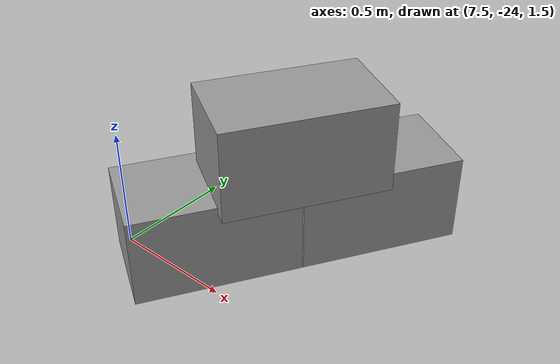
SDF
<sdf version="1.7">
 <world name="default">
  <model name="ground_plane">
   <static>1</static>
   <link name="link">
    <collision name="collision">
     <geometry><plane><normal>0 0 1</normal><size>100 100</size></plane></geometry>
     <surface>
      <contact><collide_bitmask>65535</collide_bitmask></contact>
      <friction><ode><mu>100</mu><mu2>50</mu2></ode></friction>
     </surface>
    </collision>
    <visual name="visual">
     <cast_shadows>0</cast_shadows>
     <geometry><plane><normal>0 0 1</normal><size>100 100</size></plane></geometry>
     <material>
      <script><uri>file://media/materials/scripts/gazebo.material</uri><name>Gazebo/Grey</name></script>
     </material>
    </visual>
   </link>
  </model>
  <model name="raceway">
   <static>1</static>
   <link name="link">
    <collision name="collision">
     <pose>0 0 0 1.5707 -0 0</pose>
     <geometry><mesh><uri>model://raceway/meshes/raceway.obj</uri></mesh></geometry>
    </collision>
    <visual name="visual">
     <pose>0 0 0 1.5707 -0 0</pose>
     <geometry><mesh><uri>model://raceway/meshes/raceway.obj</uri></mesh></geometry>
    </visual>
    <scale>3</scale>
   </link>
   <pose>12.1426 -6.58602 1.42468 9.6e-05 -0 0</pose>
  </model>
  <model name="Add_Box">
   <link name="link">
    <inertial>
     <mass>1</mass>
     <inertia>
      <ixx>0.166667</ixx>
      <ixy>0</ixy>
      <ixz>0</ixz>
      <iyy>0.166667</iyy>
      <iyz>0</iyz>
      <izz>0.166667</izz>
     </inertia>
    </inertial>
    <kinematic>1</kinematic>
    <gravity>0</gravity>
    <visual name="visual">
     <geometry><box><size>0.686 0.406 0.381</size></box></geometry>
     <material>
      <script><name>Gazebo/Grey</name><uri>file://media/materials/scripts/gazebo.material</uri></script>
      <shader type="pixel"><normal_map>__default__</normal_map></shader>
      <ambient>0.3 0.3 0.3 1</ambient>
      <diffuse>0.7 0.7 0.7 1</diffuse>
      <specular>0.01 0.01 0.01 1</specular>
      <emissive>0 0 0 1</emissive>
     </material>
    </visual>
    <collision name="collision">
     <geometry><box><size>1 1 1</size></box></geometry>
     <surface>
      <friction>
       <ode><mu>1</mu><mu2>1</mu2><fdir1>0 0 0</fdir1><slip1>0</slip1><slip2>0</slip2></ode>
       <torsional>
        <coefficient>1</coefficient>
        <patch_radius>0</patch_radius>
        <surface_radius>0</surface_radius>
        <use_patch_radius>1</use_patch_radius>
        <ode><slip>0</slip></ode>
       </torsional>
      </friction>
      <bounce><restitution_coefficient>0</restitution_coefficient><threshold>1e+06</threshold></bounce>
      <contact>
       <collide_without_contact>0</collide_without_contact>
       <collide_without_contact_bitmask>1</collide_without_contact_bitmask>
       <collide_bitmask>1</collide_bitmask>
       <ode>
        <soft_cfm>0</soft_cfm>
        <soft_erp>0.2</soft_erp>
        <kp>1e+13</kp>
        <kd>1</kd>
        <max_vel>0.01</max_vel>
        <min_depth>0</min_depth>
       </ode>
       <bullet>
        <split_impulse>1</split_impulse>
        <split_impulse_penetration_threshold>-0.01</split_impulse_penetration_threshold>
        <soft_cfm>0</soft_cfm>
        <soft_erp>0.2</soft_erp>
        <kp>1e+13</kp>
        <kd>1</kd>
       </bullet>
      </contact>
     </surface>
    </collision>
   </link>
   <link name="link_clone">
    <inertial>
     <mass>1</mass>
     <inertia>
      <ixx>0.166667</ixx>
      <ixy>0</ixy>
      <ixz>0</ixz>
      <iyy>0.166667</iyy>
      <iyz>0</iyz>
      <izz>0.166667</izz>
     </inertia>
    </inertial>
    <pose>-0.343354 -0.063316 0.354303 1e-05 -0 0</pose>
    <gravity>0</gravity>
    <visual name="visual">
     <geometry><box><size>0.686 0.406 0.381</size></box></geometry>
     <material>
      <script><name>Gazebo/Grey</name><uri>file://media/materials/scripts/gazebo.material</uri></script>
      <shader type="pixel"><normal_map>__default__</normal_map></shader>
      <ambient>0.3 0.3 0.3 1</ambient>
      <diffuse>0.7 0.7 0.7 1</diffuse>
      <specular>0.01 0.01 0.01 1</specular>
      <emissive>0 0 0 1</emissive>
     </material>
    </visual>
    <collision name="collision">
     <geometry><box><size>1 1 1</size></box></geometry>
     <surface>
      <friction>
       <ode><mu>1</mu><mu2>1</mu2><fdir1>0 0 0</fdir1><slip1>0</slip1><slip2>0</slip2></ode>
       <torsional>
        <coefficient>1</coefficient>
        <patch_radius>0</patch_radius>
        <surface_radius>0</surface_radius>
        <use_patch_radius>1</use_patch_radius>
        <ode><slip>0</slip></ode>
       </torsional>
      </friction>
      <bounce><restitution_coefficient>0</restitution_coefficient><threshold>1e+06</threshold></bounce>
      <contact>
       <collide_without_contact>0</collide_without_contact>
       <collide_without_contact_bitmask>1</collide_without_contact_bitmask>
       <collide_bitmask>1</collide_bitmask>
       <ode>
        <soft_cfm>0</soft_cfm>
        <soft_erp>0.2</soft_erp>
        <kp>1e+13</kp>
        <kd>1</kd>
        <max_vel>0.01</max_vel>
        <min_depth>0</min_depth>
       </ode>
       <bullet>
        <split_impulse>1</split_impulse>
        <split_impulse_penetration_threshold>-0.01</split_impulse_penetration_threshold>
        <soft_cfm>0</soft_cfm>
        <soft_erp>0.2</soft_erp>
        <kp>1e+13</kp>
        <kd>1</kd>
       </bullet>
      </contact>
     </surface>
    </collision>
   </link>
   <link name="link_clone_clone">
    <inertial>
     <mass>1</mass>
     <inertia>
      <ixx>0.166667</ixx>
      <ixy>0</ixy>
      <ixz>0</ixz>
      <iyy>0.166667</iyy>
      <iyz>0</iyz>
      <izz>0.166667</izz>
     </inertia>
    </inertial>
    <pose>-0.690786 -0.000183 -1e-05 2e-05 -0 0</pose>
    <gravity>0</gravity>
    <visual name="visual">
     <geometry><box><size>0.686 0.406 0.381</size></box></geometry>
     <material>
      <script><name>Gazebo/Grey</name><uri>file://media/materials/scripts/gazebo.material</uri></script>
      <shader type="pixel"><normal_map>__default__</normal_map></shader>
      <ambient>0.3 0.3 0.3 1</ambient>
      <diffuse>0.7 0.7 0.7 1</diffuse>
      <specular>0.01 0.01 0.01 1</specular>
      <emissive>0 0 0 1</emissive>
     </material>
    </visual>
    <collision name="collision">
     <geometry><box><size>1 1 1</size></box></geometry>
     <surface>
      <friction>
       <ode><mu>1</mu><mu2>1</mu2><fdir1>0 0 0</fdir1><slip1>0</slip1><slip2>0</slip2></ode>
       <torsional>
        <coefficient>1</coefficient>
        <patch_radius>0</patch_radius>
        <surface_radius>0</surface_radius>
        <use_patch_radius>1</use_patch_radius>
        <ode><slip>0</slip></ode>
       </torsional>
      </friction>
      <bounce><restitution_coefficient>0</restitution_coefficient><threshold>1e+06</threshold></bounce>
      <contact>
       <collide_without_contact>0</collide_without_contact>
       <collide_without_contact_bitmask>1</collide_without_contact_bitmask>
       <collide_bitmask>1</collide_bitmask>
       <ode>
        <soft_cfm>0</soft_cfm>
        <soft_erp>0.2</soft_erp>
        <kp>1e+13</kp>
        <kd>1</kd>
        <max_vel>0.01</max_vel>
        <min_depth>0</min_depth>
       </ode>
       <bullet>
        <split_impulse>1</split_impulse>
        <split_impulse_penetration_threshold>-0.01</split_impulse_penetration_threshold>
        <soft_cfm>0</soft_cfm>
        <soft_erp>0.2</soft_erp>
        <kp>1e+13</kp>
        <kd>1</kd>
       </bullet>
      </contact>
     </surface>
    </collision>
   </link>
   <static>0</static>
   <pose>8.10311 -23.2047 1.61518 0 1e-06 1.03198</pose>
  </model>
 </world>
</sdf>
